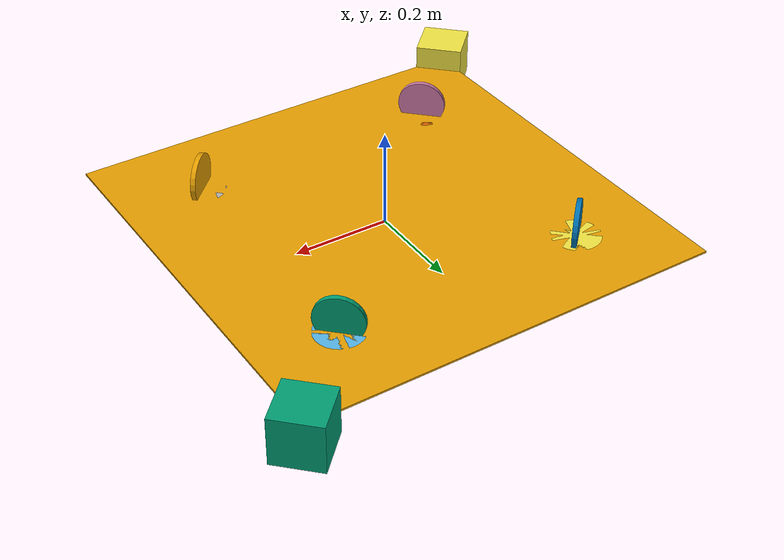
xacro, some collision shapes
<?xml version="1.0"?>
<robot xmlns:xacro="http://ros.org/wiki/xacro" name="my_robo" >

 <xacro:include filename="$(find simc)/urdf/common.xacro"/>
 <xacro:property name="M_PI" value="3.14159274"/>
<xacro:property name="mu" value="0.5"/>

 <link name="base_link">
    <box_create mass="30" height="0.004" width="0.877" depth="0.877"/>

 </link>

<unit_create base_name="left_front_steering" wheel_name="left_front_wheel"/>

  <joint name="left_front_steering_joint" type="continuous">
    <parent link="base_link"/>
    <child link="left_front_steering"/>
    <origin rpy="0 0 ${3*M_PI/4}" xyz="0.265 0.265 0"/>
    <axis xyz="0 0 1"/>
  </joint>

  <joint name="left_front_wheel_joint" type="continuous">
    <parent link="left_front_steering"/>
    <child link="left_front_wheel"/>
    <origin rpy="0 0 0" xyz="0 0 0.028"/>
    <axis xyz="0 1 0"/>
  </joint>

<unit_create base_name="left_rear_steering" wheel_name="left_rear_wheel"/>

  <joint name="left_rear_steering_joint" type="continuous">
    <parent link="base_link"/>
    <child link="left_rear_steering"/>
    <origin rpy="0 0 ${-3*M_PI/4}" xyz="-0.265 0.265 0"/>
    <axis xyz="0 0 1"/>
  </joint>

  <joint name="left_rear_wheel_joint" type="continuous">
    <parent link="left_rear_steering"/>
    <child link="left_rear_wheel"/>
    <origin rpy="0 0 0" xyz="0 0 0.028"/>
    <axis xyz="0 1 0"/>
  </joint>

<unit_create base_name="right_rear_steering" wheel_name="right_rear_wheel"/>

  <joint name="right_rear_steering_joint" type="continuous">
    <parent link="base_link"/>
    <child link="right_rear_steering"/>
    <origin rpy="0 0 ${-M_PI/4}" xyz="-0.265 -0.265 0"/>
    <axis xyz="0 0 1"/>
  </joint>

  <joint name="right_rear_wheel_joint" type="continuous">
    <parent link="right_rear_steering"/>
    <child link="right_rear_wheel"/>
    <origin rpy="0 0 0" xyz="0 0 0.028"/>
    <axis xyz="0 1 0"/>
  </joint>

<unit_create base_name="right_front_steering" wheel_name="right_front_wheel"/>

  <joint name="right_front_steering_joint" type="continuous">
    <parent link="base_link"/>
    <child link="right_front_steering"/>
    <origin rpy="0 0 ${M_PI/4}" xyz="0.265 -0.265 0"/>
    <axis xyz="0 0 1"/>
  </joint>

  <joint name="right_front_wheel_joint" type="continuous">
    <parent link="right_front_steering"/>
    <child link="right_front_wheel"/>
    <origin rpy="0 0 0" xyz="0 0 0.028"/>
    <axis xyz="0 1 0"/>
  </joint>

<link name="base_footprint"/>
  <joint name="base_joint" type="fixed">
   <parent link="base_footprint"/>
   <child link="base_link"/>
   <origin rpy="0 0 0" xyz="0 0 0.022"/>

 </joint>

 <link name="left_hokuyo_link">
    <collision>
      <origin xyz="0 0 0" rpy="0 0 0"/>
      <geometry>
        <box size="0.1 0.1 0.1"/>
      </geometry>
    </collision>

    <visual>
      <origin xyz="0 0 0" rpy="0 0 0"/>
      <geometry>
        <mesh filename="package://rrbot_description/meshes/hokuyo.dae"/>
      </geometry>
    </visual>

  </link>
  <joint name="left_hokuyo_joint" type="fixed">
    <axis xyz="0 1 0" />
    <origin xyz="0.4385 0.4385 0.002" rpy="0 0 ${M_PI*3/4}"/>
    <parent link="base_link"/>
    <child link="left_hokuyo_link"/>
  </joint>

<link name="right_hokuyo_link">
    <collision>
      <origin xyz="0 0 0" rpy="0 0 0"/>
      <geometry>
        <box size="0.1 0.1 0.1"/>
      </geometry>
    </collision>

    <visual>
      <origin xyz="0 0 0" rpy="0 0 0"/>
      <geometry>
        <mesh filename="package://rrbot_description/meshes/hokuyo.dae"/>
      </geometry>
    </visual>
  </link>

  <joint name="right_hokuyo_joint" type="fixed">
    <axis xyz="0 1 0" />
    <origin xyz="-0.4385 -0.4385 0.002" rpy="0 0 ${-M_PI/4}"/>
    <parent link="base_link"/>
    <child link="right_hokuyo_link"/>
  </joint>

  <!-- ===============  Transmission ===============-->
 <trans_create base_joint_name="left_front_steering_joint" wheel_name="left_front_wheel"/>
<trans_create base_joint_name="left_rear_steering_joint" wheel_name="left_rear_wheel"/>
<trans_create base_joint_name="right_rear_steering_joint" wheel_name="right_rear_wheel"/>
<trans_create base_joint_name="right_front_steering_joint" wheel_name="right_front_wheel"/>

   <!-- =============== Gazebo =============== -->
  <gazebo>
    <plugin name="gazebo_ros_control" filename="libgazebo_ros_control.so">
      <robotNamespace>my_robo</robotNamespace>
    </plugin>
  </gazebo>

 <gazebo reference="base_link">
   <selfCollide>true</selfCollide>
    <mu1 value="${mu}" />
    <mu2 value="${mu}" />
  </gazebo>

 <gazebo reference="left_front_steering">
   <selfCollide>true</selfCollide>
     <!-- This caster is no frictional resistance. -->
      <mu1 value="${mu}" />
    <mu2 value="${mu}" />
  </gazebo>

<gazebo reference="left_front_wheel">
   <selfCollide>true</selfCollide>
     <!-- This caster is no frictional resistance. -->
    <mu1 value="${mu}" />
    <mu2 value="${mu}" />
  </gazebo>

 <gazebo reference="left_rear_steering">
   <selfCollide>true</selfCollide>
     <!-- This caster is no frictional resistance. -->
    <mu1 value="${mu}" />
    <mu2 value="${mu}" />
  </gazebo>

<gazebo reference="left_rear_wheel">
   <selfCollide>true</selfCollide>
     <!-- This caster is no frictional resistance. -->
    <mu1 value="${mu}" />
    <mu2 value="${mu}" />
  </gazebo>

 <gazebo reference="right_rear_steering">
   <selfCollide>true</selfCollide>
     <!-- This caster is no frictional resistance. -->
    <mu1 value="${mu}" />
    <mu2 value="${mu}" />
  </gazebo>

<gazebo reference="right_rear_wheel">
   <selfCollide>true</selfCollide>
     <!-- This caster is no frictional resistance. -->
    <mu1 value="${mu}" />
    <mu2 value="${mu}" />
</gazebo>
 <gazebo reference="right_front_steering">
   <selfCollide>true</selfCollide>
     <!-- This caster is no frictional resistance. -->
    <mu1 value="${mu}" />
    <mu2 value="${mu}" />
  </gazebo>

<gazebo reference="right_front_wheel">
   <selfCollide>true</selfCollide>
     <!-- This caster is no frictional resistance. -->
    <mu1 value="${mu}" />
    <mu2 value="${mu}" />
  </gazebo>

  <!-- hokuyo -->
  <gazebo reference="left_hokuyo_link">
    <sensor type="ray" name="left_hokuyo_sensor">
      <pose>0 0 0 0 0 0</pose>
      <visualize>false</visualize>
      <update_rate>40</update_rate>
      <ray>
        <scan>
          <horizontal>
            <samples>720</samples>
            <resolution>1</resolution>
            <min_angle>-1.570796</min_angle>
            <max_angle>1.570796</max_angle>
          </horizontal>
        </scan>
        <range>
          <min>0.10</min>
          <max>30.0</max>
          <resolution>0.01</resolution>
        </range>
        <noise>
          <type>gaussian</type>
          <mean>0.0</mean>
          <stddev>0.01</stddev>
        </noise>
      </ray>
      <plugin name="gazebo_ros_left_hokuyo_controller" filename="libgazebo_ros_laser.so">
        <topicName>laser/left_scan</topicName>
        <frameName>left_hokuyo_link</frameName>
      </plugin>
    </sensor>
  </gazebo>

  <!-- hokuyo -->
  <gazebo reference="right_hokuyo_link">
    <sensor type="ray" name="right_hokuyo_sensor">
      <pose>0 0 0 0 0 0</pose>
      <visualize>false</visualize>
      <update_rate>40</update_rate>
      <ray>
        <scan>
          <horizontal>
            <samples>720</samples>
            <resolution>1</resolution>
            <min_angle>-1.570796</min_angle>
            <max_angle>1.570796</max_angle>
          </horizontal>
        </scan>
        <range>
          <min>0.10</min>
          <max>30.0</max>
          <resolution>0.01</resolution>
        </range>
        <noise>
          <type>gaussian</type>
          <mean>0.0</mean>
          <stddev>0.01</stddev>
        </noise>
      </ray>
      <plugin name="gazebo_ros_right_hokuyo_controller" filename="libgazebo_ros_laser.so">
        <topicName>laser/right_scan</topicName>
        <frameName>right_hokuyo_link</frameName>
      </plugin>
    </sensor>
  </gazebo>
</robot>

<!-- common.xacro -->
<robot xmlns:xacro="http://ros.org/wiki/xacro">
  <property name="M_PI" value="3.14159274"/>

  <xacro:macro name="cylinder_inertial" params="mass radius length">
	<mass value="${mass}"/>
	<inertia ixx="${((radius*radius)/4 + (length*length)/12)*mass}" ixy="0" ixz="0"
			 iyy="${((radius*radius)/4 + (length*length)/12)*mass}" iyz="0"
			 izz="${(mass*radius*radius)/2}" />
  </xacro:macro>

  <xacro:macro name="box_inertial" params="mass height width depth">
	<mass value="${mass}"/>
	<inertia ixx="${(mass*(height*height+width*width))/12}" ixy="0" ixz="0"
			 iyy="${(mass*(height*height+depth*depth))/12}" iyz="0"
			 izz="${(mass*(width*width+depth*depth))/12}" />
  </xacro:macro>

<xacro:macro name="box_create" params="mass height width depth">
	<visual>
      <geometry>
        <box size="${width} ${depth} ${height}"/>
      </geometry>
    </visual>

    <collision>
      <geometry>
      <box size="${width} ${depth} ${height}"/>
      </geometry>
    </collision>

   <inertial>
    	<origin xyz="0 0 0"/>
    	<box_inertial mass="${mass}" height="${height}" width="${width}" depth="${depth}"/>
   </inertial>
  </xacro:macro>

<xacro:macro name="cylinder_create" params="rpy mass radius length">
	<visual>
	<origin rpy="${rpy} 0 0" xyz="0 0 0"/>
      <geometry>
      <cylinder radius="${radius}" length="${length}"/>
      </geometry>
    </visual>

    <collision>
	<origin rpy="${rpy} 0 0" xyz="0 0 0"/>
      <geometry>
      <cylinder radius="${radius}" length="${length}"/>
      </geometry>
    </collision>

   <inertial>
    <origin xyz="0 0 0"/>
    <cylinder_inertial mass="${mass}" radius="${radius}" length="${length}"/>
   </inertial>
  </xacro:macro>

<xacro:macro name="unit_create" params="base_name wheel_name">
	<link name="${base_name}">
    <cylinder_create rpy="0" mass="0.1" radius="0.05" length="0.004"/>
  </link>

  <link name="${wheel_name}">
    <cylinder_create rpy="${M_PI/2}" mass="0.1" radius="0.05" length="0.01"/>
  </link>
  </xacro:macro>

<xacro:macro name="trans_create" params="base_joint_name wheel_name">

<transmission name="${base_joint_name}_trans">
      <type>transmission_interface/SimpleTransmission</type>
      <joint name="${base_joint_name}">
  <hardwareInterface>PositionJointInterface</hardwareInterface>
      </joint>
   <actuator name="${base_joint_name}_motor">
  <hardwareInterface>PositionJointInterface</hardwareInterface>
  <mechanicalReduction>100</mechanicalReduction>
      </actuator>
 </transmission>
<transmission name="${wheel_name}_joint_trans">
      <type>transmission_interface/SimpleTransmission</type>
      <joint name="${wheel_name}_joint">
  <hardwareInterface>VelocityJointInterface</hardwareInterface>
      </joint>
   <actuator name="${wheel_name}_motor">
  <hardwareInterface>VelocityJointInterface</hardwareInterface>
  <mechanicalReduction>100</mechanicalReduction>
      </actuator>
 </transmission>
  </xacro:macro>
</robot>
